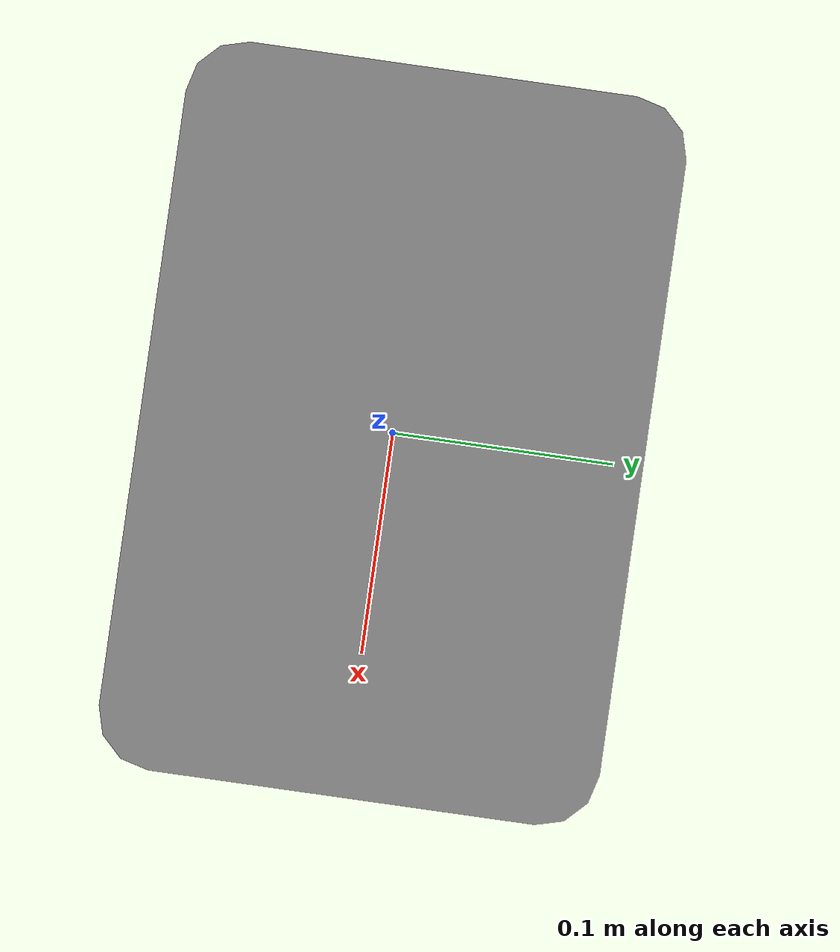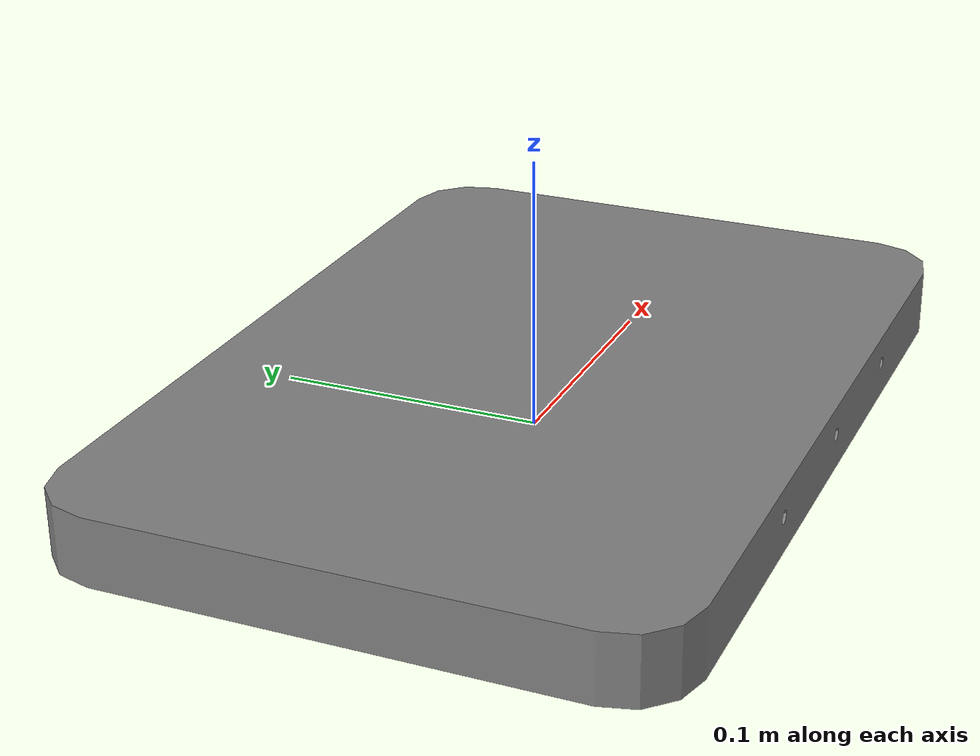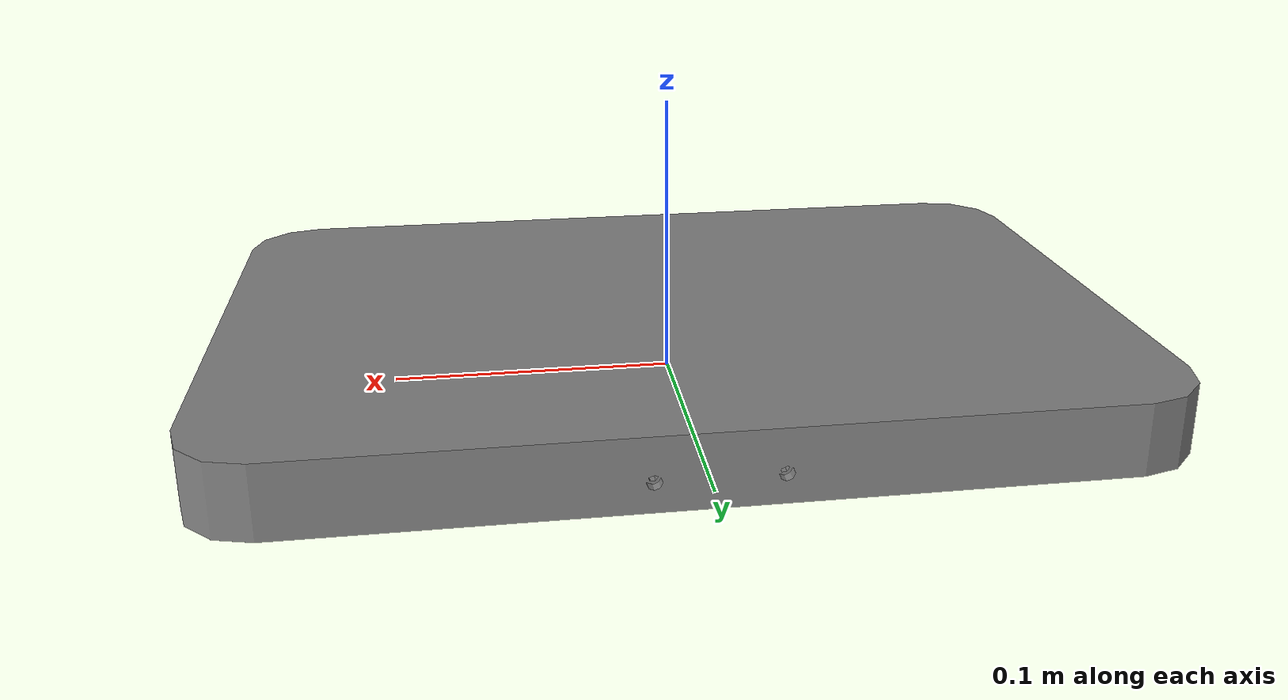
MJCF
<mujoco model="csm_outer_door">
  <default>
    <default class="visual">
      <geom group="2" type="mesh" contype="0" conaffinity="0"/>
    </default>
    <default class="collision">
      <geom group="3" type="mesh"/>
    </default>
  </default>
  <asset>
    <material name="mtl_csm_outer_door" specular="0.20000000000000004" shininess="1.0" rgba="0.50196078 0.50196078 0.50196078 1.0"/>
    <mesh file="csm_outer_door.obj"/>
  </asset>
  <worldbody>
    <body name="csm_outer_door">
      <geom material="mtl_csm_outer_door" mesh="csm_outer_door" class="visual"/>
      <geom mesh="csm_outer_door" class="collision"/>
    </body>
  </worldbody>
</mujoco>
